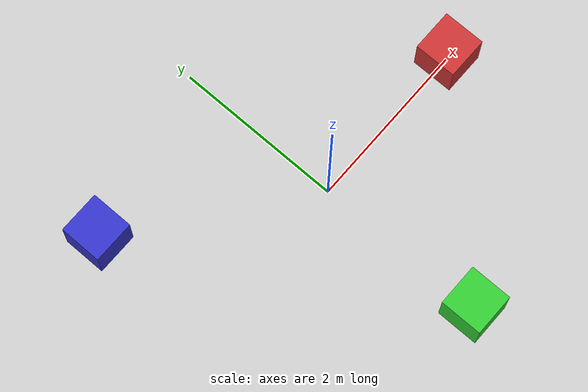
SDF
<?xml version="1.0" ?>
<sdf version="1.9">
  <world name="obstacles_world">

    <physics name="1ms" type="ignored">
      <max_step_size>0.001</max_step_size>
      <real_time_factor>1.0</real_time_factor>
    </physics>

    <!-- Core simulation systems -->
    <plugin filename="gz-sim-physics-system" name="gz::sim::systems::Physics"></plugin>
    <plugin filename="gz-sim-user-commands-system" name="gz::sim::systems::UserCommands"></plugin>
    <plugin filename="gz-sim-scene-broadcaster-system" name="gz::sim::systems::SceneBroadcaster"></plugin>

    <!-- REQUIRED for any sensor (LiDAR, camera, IMU) to actually publish data -->
    <plugin filename="gz-sim-sensors-system" name="gz::sim::systems::Sensors">
      <render_engine>ogre2</render_engine>
    </plugin>

    <light type="directional" name="sun">
      <cast_shadows>true</cast_shadows>
      <pose>0 0 10 0 0 0</pose>
      <diffuse>0.8 0.8 0.8 1</diffuse>
      <specular>0.2 0.2 0.2 1</specular>
      <attenuation>
        <range>1000</range>
        <constant>0.9</constant>
        <linear>0.01</linear>
        <quadratic>0.001</quadratic>
      </attenuation>
      <direction>-0.5 0.1 -0.9</direction>
    </light>

    <model name="ground_plane">
      <static>true</static>
      <link name="link">
        <collision name="collision">
          <geometry><plane><normal>0 0 1</normal><size>100 100</size></plane></geometry>
        </collision>
        <visual name="visual">
          <geometry><plane><normal>0 0 1</normal><size>100 100</size></plane></geometry>
          <material>
            <ambient>0.8 0.8 0.8 1</ambient>
            <diffuse>0.8 0.8 0.8 1</diffuse>
          </material>
        </visual>
      </link>
    </model>

    <!-- A couple of static obstacles so the LiDAR has something to detect -->
    <model name="obstacle_1">
      <static>true</static>
      <pose>2 0 0.25 0 0 0</pose>
      <link name="link">
        <collision name="collision"><geometry><box><size>0.5 0.5 0.5</size></box></geometry></collision>
        <visual name="visual">
          <geometry><box><size>0.5 0.5 0.5</size></box></geometry>
          <material><ambient>0.8 0.2 0.2 1</ambient><diffuse>0.8 0.2 0.2 1</diffuse></material>
        </visual>
      </link>
    </model>

    <model name="obstacle_2">
      <static>true</static>
      <pose>-2 1.5 0.25 0 0 0</pose>
      <link name="link">
        <collision name="collision"><geometry><box><size>0.5 0.5 0.5</size></box></geometry></collision>
        <visual name="visual">
          <geometry><box><size>0.5 0.5 0.5</size></box></geometry>
          <material><ambient>0.2 0.2 0.8 1</ambient><diffuse>0.2 0.2 0.8 1</diffuse></material>
        </visual>
      </link>
    </model>

    <model name="obstacle_3">
      <static>true</static>
      <pose>0 -2 0.25 0 0 0</pose>
      <link name="link">
        <collision name="collision"><geometry><box><size>0.5 0.5 0.5</size></box></geometry></collision>
        <visual name="visual">
          <geometry><box><size>0.5 0.5 0.5</size></box></geometry>
          <material><ambient>0.2 0.8 0.2 1</ambient><diffuse>0.2 0.8 0.2 1</diffuse></material>
        </visual>
      </link>
    </model>

  </world>
</sdf>
